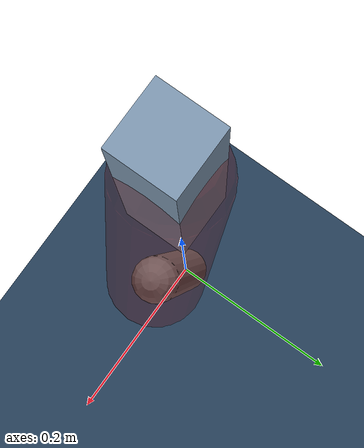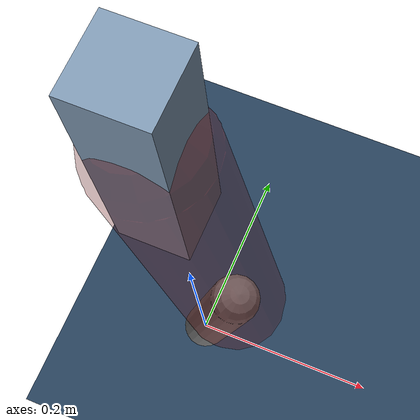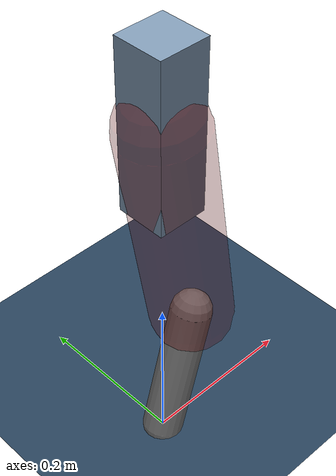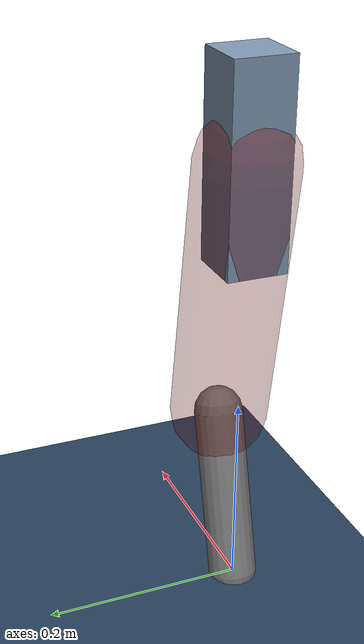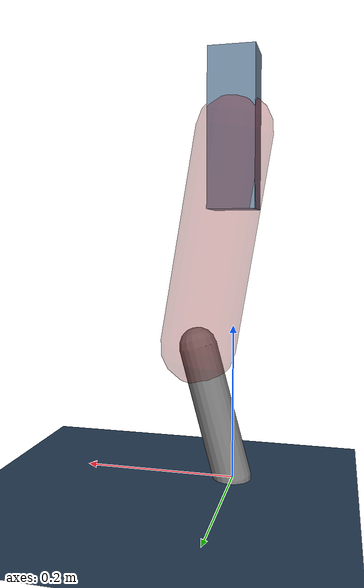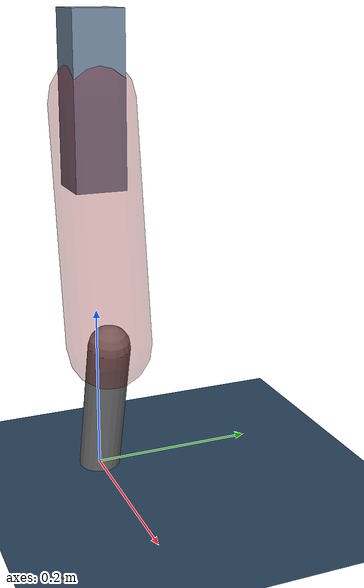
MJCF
<mujoco model="Hopper2D">
	<compiler inertiafromgeom="true" angle="radian" />
	<option timestep="0.001" integrator="implicit" cone="elliptic" solver="Newton" tolerance="1e-10" />

	<default>
		<geom contype="1" conaffinity="1" condim="3" friction="2 0.005 0.0001" solref="0.005 1" />
		<joint limited="true" damping="0.1" />
	</default>

	<asset>
		<texture name="skybox" type="skybox" builtin="gradient" rgb1=".4 .6 .8" rgb2="0 0 0" width="800" height="800" />
		<texture name="grid" type="2d" builtin="checker" rgb1=".1 .2 .3" rgb2=".2 .3 .4" width="300" height="300" mark="edge" markrgb=".2 .3 .4" />
		<material name="ground" texture="grid" texrepeat="1 1" texuniform="true" reflectance="0.1" />
		<material name="leg" rgba="0.5 0.6 0.7 1" />
	</asset>

	<worldbody>

		<geom name="floor" type="plane" size="5 5 0.25" material="ground" />

		<light directional="false" diffuse="0.8 0.8 0.8" specular="0.3 0.3 0.3" pos="0 0 2" dir="0 0 -1" />
		<light mode="targetbodycom" target="base" directional="false" diffuse="0.8 0.8 0.8" specular="0.3 0.3 0.3" pos="0 0 2" dir="0 0 -1" />

		<camera name="fixed" pos="0 -2 1" xyaxes="1 0 0 0 0 1" />
		<camera name="tracking" mode="trackcom" pos="0 -3 1" />

		<body name="root" pos="0 0 0.45048920534770087">
			<joint name="slide_x" type="slide" axis="1 0 0" range="-100 100" />
			<joint name="slide_z" type="slide" axis="0 0 1" range="0 10" />

			<body name="base" pos="0 0 0">
				<geom name="torso" type="box" size="0.03 0.03 0.1" mass="2.6870000000000003" material="leg" />

				<body name="link1" pos="0 0 0" euler="0 1.4056390241297814 0">
					<joint type="hinge" axis="0 -1 0" pos="0 0 0" name="hinge1" limited="true" range="-3.14 3.14" stiffness="0" damping="0.1" />
					<geom name="thigh" type="capsule" fromto="0 0 0 0.2823858521789958 0 0" size="0.05" rgba="0.5 0 0 0.3" mass="0.9414418008832888" />

					<body name="link2" pos="0.2823858521789958 0 0" euler="0 0.4288743031980869 0">
						<joint type="hinge" axis="0 -1 0" pos="0 0 0" name="hinge2" limited="true" range="-3.14 3.14" stiffness="0" damping="0.1" />
						<geom name="shank" type="capsule" fromto="0 0 0 0.17810335316870507 0 0" size="0.025" mass="0.38228268253496406" />

					</body>
				</body>
			</body>
		</body>
	</worldbody>

	<actuator>
		<motor name="torque1" joint="hinge1" ctrlrange="-113.1790119063141 113.1790119063141" ctrllimited="true" gear="1" />
		<motor name="torque2" joint="hinge2" ctrlrange="-87.79296289601267 87.79296289601267" ctrllimited="true" gear="1" />
	</actuator>
</mujoco>
